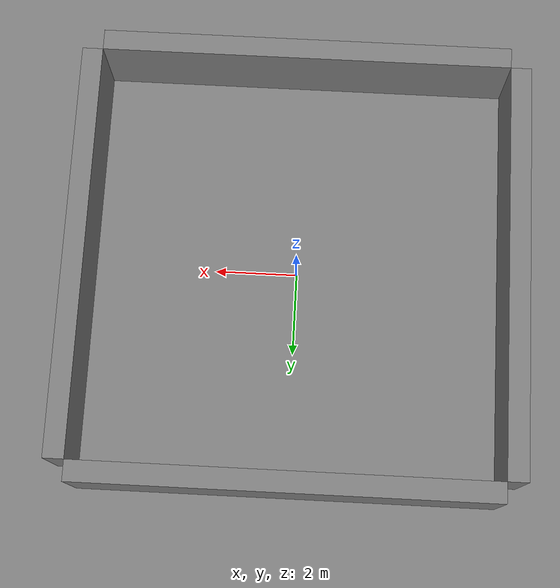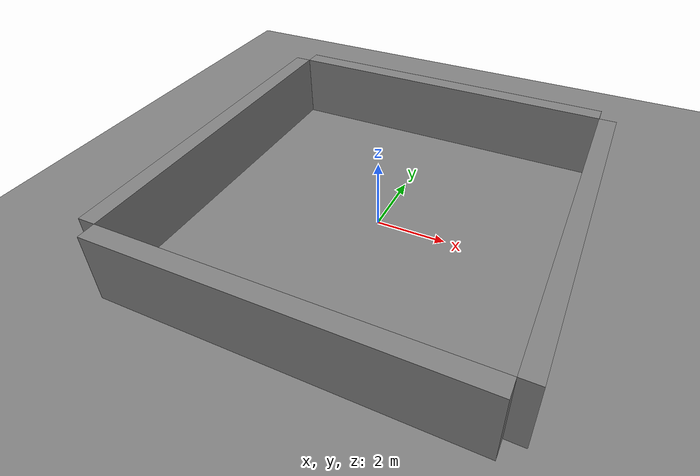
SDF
<?xml version="1.0" ?>
<sdf version="1.9">
  <!-- Canonical 10 m x 10 m arena shared by every mission. -->
  <world name="random_world">
    <physics name="fast" type="ignored">
      <max_step_size>0.01</max_step_size>
      <real_time_update_rate>0</real_time_update_rate>
    </physics>
    <plugin filename="ignition-gazebo-physics-system" name="ignition::gazebo::systems::Physics"><include_entity_names>true</include_entity_names></plugin>
    <plugin filename="ignition-gazebo-sensors-system" name="ignition::gazebo::systems::Sensors"><render_engine>ogre2</render_engine></plugin>
    <plugin filename="ignition-gazebo-user-commands-system" name="ignition::gazebo::systems::UserCommands"/>
    <plugin filename="libignition-gazebo-contact-system.so" name="ignition::gazebo::systems::Contact"><topic>/world/random_world/physics/contacts</topic></plugin>
    <plugin filename="ignition-gazebo-scene-broadcaster-system" name="ignition::gazebo::systems::SceneBroadcaster"/>
    <light name="sun" type="directional">
      <pose>0 0 10 0 0 0</pose><cast_shadows>true</cast_shadows><intensity>1</intensity>
      <direction>-0.5 0.5 -1</direction><diffuse>1 1 1 1</diffuse><specular>0.1 0.1 0.1 1</specular>
      <attenuation><range>10</range><linear>1</linear><constant>1</constant><quadratic>0</quadratic></attenuation>
    </light>
    <model name="ground_plane"><static>true</static><link name="link">
      <collision name="collision"><geometry><plane><normal>0 0 1</normal><size>50 50</size></plane></geometry><surface><friction><ode/></friction></surface></collision>
      <visual name="visual"><geometry><plane><normal>0 0 1</normal><size>50 50</size></plane></geometry><material><ambient>0.5 0.5 0.5 1</ambient><diffuse>0.5 0.5 0.5 1</diffuse></material></visual>
    </link></model>
    <model name="north_wall"><pose>0 5.25 1 0 0 0</pose><static>true</static><link name="link">
      <collision name="collision"><geometry><box><size>10 0.5 2</size></box></geometry></collision>
      <visual name="visual"><geometry><box><size>10 0.5 2</size></box></geometry><material><ambient>0.5 0.5 0.5 1</ambient><diffuse>0.5 0.5 0.5 1</diffuse></material></visual>
    </link></model>
    <model name="south_wall"><pose>0 -5.25 1 0 0 0</pose><static>true</static><link name="link">
      <collision name="collision"><geometry><box><size>10 0.5 2</size></box></geometry></collision>
      <visual name="visual"><geometry><box><size>10 0.5 2</size></box></geometry><material><ambient>0.5 0.5 0.5 1</ambient><diffuse>0.5 0.5 0.5 1</diffuse></material></visual>
    </link></model>
    <model name="east_wall"><pose>5.25 0 1 0 0 0</pose><static>true</static><link name="link">
      <collision name="collision"><geometry><box><size>0.5 10 2</size></box></geometry></collision>
      <visual name="visual"><geometry><box><size>0.5 10 2</size></box></geometry><material><ambient>0.5 0.5 0.5 1</ambient><diffuse>0.5 0.5 0.5 1</diffuse></material></visual>
    </link></model>
    <model name="west_wall"><pose>-5.25 0 1 0 0 0</pose><static>true</static><link name="link">
      <collision name="collision"><geometry><box><size>0.5 10 2</size></box></geometry></collision>
      <visual name="visual"><geometry><box><size>0.5 10 2</size></box></geometry><material><ambient>0.5 0.5 0.5 1</ambient><diffuse>0.5 0.5 0.5 1</diffuse></material></visual>
    </link></model>
    <model name="top_view_camera"><static>true</static><pose>0 0 12 0 1.57079632679 0</pose><link name="link">
      <sensor name="top_view_camera" type="camera"><always_on>true</always_on><update_rate>30</update_rate><topic>top_view_camera/image</topic>
        <camera><horizontal_fov>1.35</horizontal_fov><image><width>1280</width><height>720</height><format>R8G8B8</format></image><clip><near>0.1</near><far>100</far></clip></camera>
      </sensor>
    </link></model>
  </world>
</sdf>
